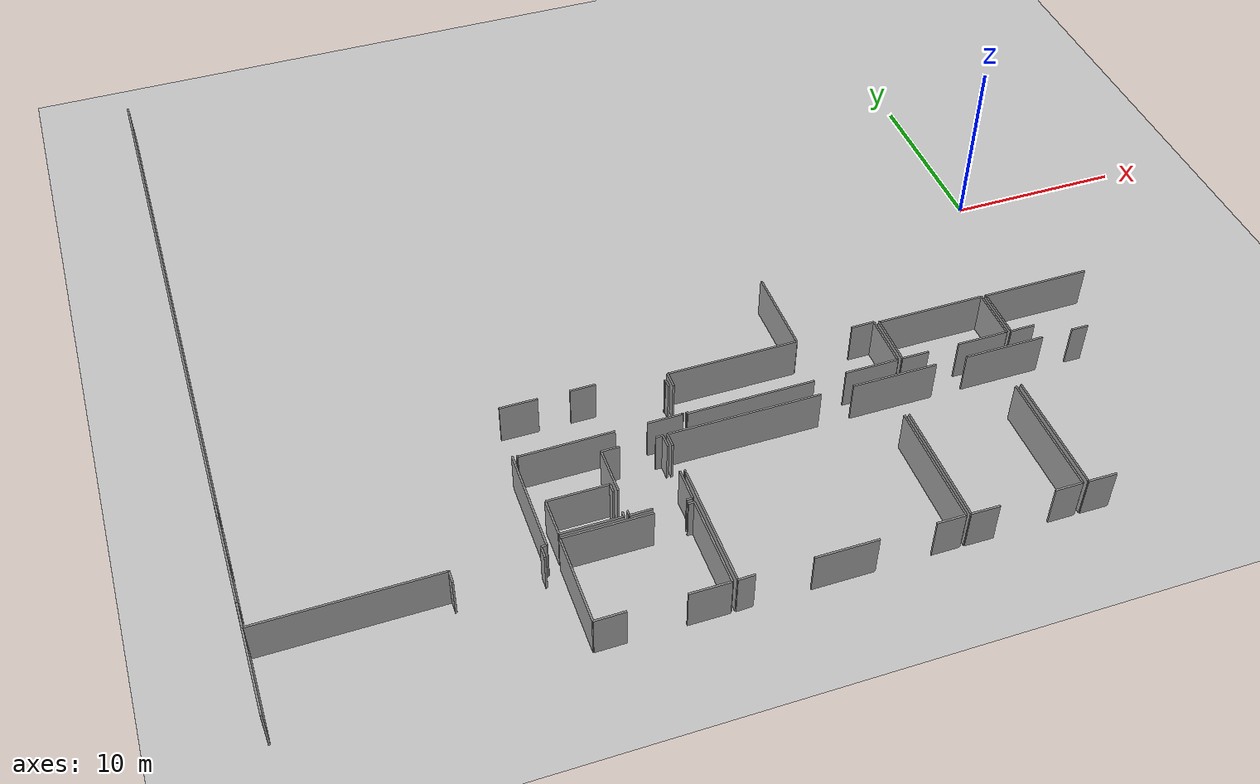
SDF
<sdf version="1.6">
 <world name="default">
  <model name="ground_plane">
   <static>1</static>
   <link name="link">
    <collision name="collision">
     <geometry><plane><normal>0 0 1</normal><size>100 100</size></plane></geometry>
     <surface><friction><ode><mu>100</mu><mu2>50</mu2></ode></friction></surface>
    </collision>
    <visual name="visual">
     <cast_shadows>0</cast_shadows>
     <geometry><plane><normal>0 0 1</normal><size>100 100</size></plane></geometry>
     <material>
      <script><uri>file://media/materials/scripts/gazebo.material</uri><name>Gazebo/Grey</name></script>
     </material>
    </visual>
   </link>
  </model>
  <model name="50045230">
   <static>1</static>
   <link name="Wall_138">
    <collision name="Wall_138_Collision">
     <geometry><box><size>1.54468241776 0.1 2.5</size></box></geometry>
     <pose>0.772341208882 0 1.25 0 0 0</pose>
    </collision>
    <visual name="Wall_138_Visual">
     <pose>0.772341208882 0 1.25 0 0 0</pose>
     <geometry><box><size>1.54468241776 0.1 2.5</size></box></geometry>
     <material>
      <script><uri>file://media/materials/scripts/gazebo.material</uri><name>Gazebo/Grey</name></script>
      <ambient>1 1 1 1</ambient>
     </material>
    </visual>
    <pose>0.0111721914 -41.7234374802 0 0 0 1.57079632679</pose>
   </link>
   <link name="Wall_139">
    <collision name="Wall_139_Collision">
     <geometry><box><size>3.10612312263 0.1 2.5</size></box></geometry>
     <pose>1.55306156131 0 1.25 0 0 0</pose>
    </collision>
    <visual name="Wall_139_Visual">
     <pose>1.55306156131 0 1.25 0 0 0</pose>
     <geometry><box><size>3.10612312263 0.1 2.5</size></box></geometry>
     <material>
      <script><uri>file://media/materials/scripts/gazebo.material</uri><name>Gazebo/Grey</name></script>
      <ambient>1 1 1 1</ambient>
     </material>
    </visual>
    <pose>0.0111721914 -37.0893902269 0 0 0 1.57079632679</pose>
   </link>
   <link name="Wall_156">
    <collision name="Wall_156_Collision">
     <geometry><box><size>6.0126702807 0.1 2.5</size></box></geometry>
     <pose>3.00633514035 0 1.25 0 0 0</pose>
    </collision>
    <visual name="Wall_156_Visual">
     <pose>3.00633514035 0 1.25 0 0 0</pose>
     <geometry><box><size>6.0126702807 0.1 2.5</size></box></geometry>
     <material>
      <script><uri>file://media/materials/scripts/gazebo.material</uri><name>Gazebo/Grey</name></script>
      <ambient>1 1 1 1</ambient>
     </material>
    </visual>
    <pose>14.7885535821 -35.693247172 0 0 0 -1.57079632679</pose>
   </link>
   <link name="Wall_157">
    <collision name="Wall_157_Collision">
     <geometry><box><size>0.292000457044 0.1 2.5</size></box></geometry>
     <pose>0.146000228522 0 1.25 0 0 0</pose>
    </collision>
    <visual name="Wall_157_Visual">
     <pose>0.146000228522 0 1.25 0 0 0</pose>
     <geometry><box><size>0.292000457044 0.1 2.5</size></box></geometry>
     <material>
      <script><uri>file://media/materials/scripts/gazebo.material</uri><name>Gazebo/Grey</name></script>
      <ambient>1 1 1 1</ambient>
     </material>
    </visual>
    <pose>14.7885535821 -41.7059174527 0 0 0 3.14159265359</pose>
   </link>
   <link name="Wall_158">
    <collision name="Wall_158_Collision">
     <geometry><box><size>0.671601051202 0.1 2.5</size></box></geometry>
     <pose>0.335800525601 0 1.25 0 0 0</pose>
    </collision>
    <visual name="Wall_158_Visual">
     <pose>0.335800525601 0 1.25 0 0 0</pose>
     <geometry><box><size>0.671601051202 0.1 2.5</size></box></geometry>
     <material>
      <script><uri>file://media/materials/scripts/gazebo.material</uri><name>Gazebo/Grey</name></script>
      <ambient>1 1 1 1</ambient>
     </material>
    </visual>
    <pose>14.496553125 -41.7059174527 0 0 0 -1.57079632679</pose>
   </link>
   <link name="Wall_159">
    <collision name="Wall_159_Collision">
     <geometry><box><size>0.703594144756 0.1 2.5</size></box></geometry>
     <pose>0.351797072378 0 1.25 0 0 0</pose>
    </collision>
    <visual name="Wall_159_Visual">
     <pose>0.351797072378 0 1.25 0 0 0</pose>
     <geometry><box><size>0.703594144756 0.1 2.5</size></box></geometry>
     <material>
      <script><uri>file://media/materials/scripts/gazebo.material</uri><name>Gazebo/Grey</name></script>
      <ambient>1 1 1 1</ambient>
     </material>
    </visual>
    <pose>9.9093529016 -42.3775185039 0 0 0 1.57079632679</pose>
   </link>
   <link name="Wall_160">
    <collision name="Wall_160_Collision">
     <geometry><box><size>9.89830454779 0.1 2.5</size></box></geometry>
     <pose>4.9491522739 0 1.25 0 0 0</pose>
    </collision>
    <visual name="Wall_160_Visual">
     <pose>4.9491522739 0 1.25 0 0 0</pose>
     <geometry><box><size>9.89830454779 0.1 2.5</size></box></geometry>
     <material>
      <script><uri>file://media/materials/scripts/gazebo.material</uri><name>Gazebo/Grey</name></script>
      <ambient>1 1 1 1</ambient>
     </material>
    </visual>
    <pose>9.9093529016 -41.6739243592 0 0 0 -3.13659045072</pose>
   </link>
   <link name="Wall_161">
    <collision name="Wall_161_Collision">
     <geometry><box><size>0.0944558000178 0.1 2.5</size></box></geometry>
     <pose>0.0472279000089 0 1.25 0 0 0</pose>
    </collision>
    <visual name="Wall_161_Visual">
     <pose>0.0472279000089 0 1.25 0 0 0</pose>
     <geometry><box><size>0.0944558000178 0.1 2.5</size></box></geometry>
     <material>
      <script><uri>file://media/materials/scripts/gazebo.material</uri><name>Gazebo/Grey</name></script>
      <ambient>1 1 1 1</ambient>
     </material>
    </visual>
    <pose>15.0474183351 -35.800906471 0 0 0 1.57079632679</pose>
   </link>
   <link name="Wall_162">
    <collision name="Wall_162_Collision">
     <geometry><box><size>2.10608503561 0.1 2.5</size></box></geometry>
     <pose>1.05304251781 0 1.25 0 0 0</pose>
    </collision>
    <visual name="Wall_162_Visual">
     <pose>1.05304251781 0 1.25 0 0 0</pose>
     <geometry><box><size>2.10608503561 0.1 2.5</size></box></geometry>
     <material>
      <script><uri>file://media/materials/scripts/gazebo.material</uri><name>Gazebo/Grey</name></script>
      <ambient>1 1 1 1</ambient>
     </material>
    </visual>
    <pose>15.0474183351 -32.2872522757 0 0 0 0.0</pose>
   </link>
   <link name="Wall_163">
    <collision name="Wall_163_Collision">
     <geometry><box><size>1.42191526908 0.1 2.5</size></box></geometry>
     <pose>0.710957634542 0 1.25 0 0 0</pose>
    </collision>
    <visual name="Wall_163_Visual">
     <pose>0.710957634542 0 1.25 0 0 0</pose>
     <geometry><box><size>1.42191526908 0.1 2.5</size></box></geometry>
     <material>
      <script><uri>file://media/materials/scripts/gazebo.material</uri><name>Gazebo/Grey</name></script>
      <ambient>1 1 1 1</ambient>
     </material>
    </visual>
    <pose>18.9292470197 -32.2872522757 0 0 0 0.0</pose>
   </link>
   <link name="Wall_168">
    <collision name="Wall_168_Collision">
     <geometry><box><size>0.0938210164155 0.1 2.5</size></box></geometry>
     <pose>0.0469105082077 0 1.25 0 0 0</pose>
    </collision>
    <visual name="Wall_168_Visual">
     <pose>0.0469105082077 0 1.25 0 0 0</pose>
     <geometry><box><size>0.0938210164155 0.1 2.5</size></box></geometry>
     <material>
      <script><uri>file://media/materials/scripts/gazebo.material</uri><name>Gazebo/Grey</name></script>
      <ambient>1 1 1 1</ambient>
     </material>
    </visual>
    <pose>23.8932547894 -33.2257163533 0 0 0 0.0</pose>
   </link>
   <link name="Wall_169">
    <collision name="Wall_169_Collision">
     <geometry><box><size>0.452600708419 0.1 2.5</size></box></geometry>
     <pose>0.226300354209 0 1.25 0 0 0</pose>
    </collision>
    <visual name="Wall_169_Visual">
     <pose>0.226300354209 0 1.25 0 0 0</pose>
     <geometry><box><size>0.452600708419 0.1 2.5</size></box></geometry>
     <material>
      <script><uri>file://media/materials/scripts/gazebo.material</uri><name>Gazebo/Grey</name></script>
      <ambient>1 1 1 1</ambient>
     </material>
    </visual>
    <pose>23.9870758059 -33.2257163533 0 0 0 -1.57079632679</pose>
   </link>
   <link name="Wall_170">
    <collision name="Wall_170_Collision">
     <geometry><box><size>0.0756662053906 0.1 2.5</size></box></geometry>
     <pose>0.0378331026953 0 1.25 0 0 0</pose>
    </collision>
    <visual name="Wall_170_Visual">
     <pose>0.0378331026953 0 1.25 0 0 0</pose>
     <geometry><box><size>0.0756662053906 0.1 2.5</size></box></geometry>
     <material>
      <script><uri>file://media/materials/scripts/gazebo.material</uri><name>Gazebo/Grey</name></script>
      <ambient>1 1 1 1</ambient>
     </material>
    </visual>
    <pose>23.9870758059 -35.6957863064 0 0 0 -1.57079632679</pose>
   </link>
   <link name="Wall_171">
    <collision name="Wall_171_Collision">
     <geometry><box><size>1.95069000978 0.1 2.5</size></box></geometry>
     <pose>0.975345004888 0 1.25 0 0 0</pose>
    </collision>
    <visual name="Wall_171_Visual">
     <pose>0.975345004888 0 1.25 0 0 0</pose>
     <geometry><box><size>1.95069000978 0.1 2.5</size></box></geometry>
     <material>
      <script><uri>file://media/materials/scripts/gazebo.material</uri><name>Gazebo/Grey</name></script>
      <ambient>1 1 1 1</ambient>
     </material>
    </visual>
    <pose>23.9870758059 -35.7714525118 0 0 0 3.14159265359</pose>
   </link>
   <link name="Wall_172">
    <collision name="Wall_172_Collision">
     <geometry><box><size>5.22968417301 0.1 2.5</size></box></geometry>
     <pose>2.61484208651 0 1.25 0 0 0</pose>
    </collision>
    <visual name="Wall_172_Visual">
     <pose>2.61484208651 0 1.25 0 0 0</pose>
     <geometry><box><size>5.22968417301 0.1 2.5</size></box></geometry>
     <material>
      <script><uri>file://media/materials/scripts/gazebo.material</uri><name>Gazebo/Grey</name></script>
      <ambient>1 1 1 1</ambient>
     </material>
    </visual>
    <pose>20.277019564 -35.7714525118 0 0 0 -3.13596055156</pose>
   </link>
   <link name="Wall_213">
    <collision name="Wall_213_Collision">
     <geometry><box><size>0.325643987964 0.1 2.5</size></box></geometry>
     <pose>0.162821993982 0 1.25 0 0 0</pose>
    </collision>
    <visual name="Wall_213_Visual">
     <pose>0.162821993982 0 1.25 0 0 0</pose>
     <geometry><box><size>0.325643987964 0.1 2.5</size></box></geometry>
     <material>
      <script><uri>file://media/materials/scripts/gazebo.material</uri><name>Gazebo/Grey</name></script>
      <ambient>1 1 1 1</ambient>
     </material>
    </visual>
    <pose>19.1667830437 -41.2566176191 0 0 0 1.57079632679</pose>
   </link>
   <link name="Wall_214">
    <collision name="Wall_214_Collision">
     <geometry><box><size>2.72195208653 0.1 2.5</size></box></geometry>
     <pose>1.36097604327 0 1.25 0 0 0</pose>
    </collision>
    <visual name="Wall_214_Visual">
     <pose>1.36097604327 0 1.25 0 0 0</pose>
     <geometry><box><size>2.72195208653 0.1 2.5</size></box></geometry>
     <material>
      <script><uri>file://media/materials/scripts/gazebo.material</uri><name>Gazebo/Grey</name></script>
      <ambient>1 1 1 1</ambient>
     </material>
    </visual>
    <pose>19.1667830437 -39.5608567039 0 0 0 1.57079632679</pose>
   </link>
   <link name="Wall_215">
    <collision name="Wall_215_Collision">
     <geometry><box><size>0.976297180291 0.1 2.5</size></box></geometry>
     <pose>0.488148590146 0 1.25 0 0 0</pose>
    </collision>
    <visual name="Wall_215_Visual">
     <pose>0.488148590146 0 1.25 0 0 0</pose>
     <geometry><box><size>0.976297180291 0.1 2.5</size></box></geometry>
     <material>
      <script><uri>file://media/materials/scripts/gazebo.material</uri><name>Gazebo/Grey</name></script>
      <ambient>1 1 1 1</ambient>
     </material>
    </visual>
    <pose>19.1667830437 -36.8389046174 0 0 0 0.0</pose>
   </link>
   <link name="Wall_216">
    <collision name="Wall_216_Collision">
     <geometry><box><size>0.393565833407 0.1 2.5</size></box></geometry>
     <pose>0.196782916704 0 1.25 0 0 0</pose>
    </collision>
    <visual name="Wall_216_Visual">
     <pose>0.196782916704 0 1.25 0 0 0</pose>
     <geometry><box><size>0.393565833407 0.1 2.5</size></box></geometry>
     <material>
      <script><uri>file://media/materials/scripts/gazebo.material</uri><name>Gazebo/Grey</name></script>
      <ambient>1 1 1 1</ambient>
     </material>
    </visual>
    <pose>22.1123059149 -36.8389046174 0 0 0 0.0</pose>
   </link>
   <link name="Wall_217">
    <collision name="Wall_217_Collision">
     <geometry><box><size>0.783957748803 0.1 2.5</size></box></geometry>
     <pose>0.391978874402 0 1.25 0 0 0</pose>
    </collision>
    <visual name="Wall_217_Visual">
     <pose>0.391978874402 0 1.25 0 0 0</pose>
     <geometry><box><size>0.783957748803 0.1 2.5</size></box></geometry>
     <material>
      <script><uri>file://media/materials/scripts/gazebo.material</uri><name>Gazebo/Grey</name></script>
      <ambient>1 1 1 1</ambient>
     </material>
    </visual>
    <pose>22.5058717483 -36.8389046174 0 0 0 -1.57079632679</pose>
   </link>
   <link name="Wall_218">
    <collision name="Wall_218_Collision">
     <geometry><box><size>1.85598029632 0.1 2.5</size></box></geometry>
     <pose>0.927990148158 0 1.25 0 0 0</pose>
    </collision>
    <visual name="Wall_218_Visual">
     <pose>0.927990148158 0 1.25 0 0 0</pose>
     <geometry><box><size>1.85598029632 0.1 2.5</size></box></geometry>
     <material>
      <script><uri>file://media/materials/scripts/gazebo.material</uri><name>Gazebo/Grey</name></script>
      <ambient>1 1 1 1</ambient>
     </material>
    </visual>
    <pose>22.5058717483 -39.3795625071 0 0 0 -1.57079632679</pose>
   </link>
   <link name="Wall_219">
    <collision name="Wall_219_Collision">
     <geometry><box><size>0.329325732858 0.1 2.5</size></box></geometry>
     <pose>0.164662866429 0 1.25 0 0 0</pose>
    </collision>
    <visual name="Wall_219_Visual">
     <pose>0.164662866429 0 1.25 0 0 0</pose>
     <geometry><box><size>0.329325732858 0.1 2.5</size></box></geometry>
     <material>
      <script><uri>file://media/materials/scripts/gazebo.material</uri><name>Gazebo/Grey</name></script>
      <ambient>1 1 1 1</ambient>
     </material>
    </visual>
    <pose>22.5058717483 -41.2355428035 0 0 0 3.14159265359</pose>
   </link>
   <link name="Wall_220">
    <collision name="Wall_220_Collision">
     <geometry><box><size>1.23254907313 0.1 2.5</size></box></geometry>
     <pose>0.616274536564 0 1.25 0 0 0</pose>
    </collision>
    <visual name="Wall_220_Visual">
     <pose>0.616274536564 0 1.25 0 0 0</pose>
     <geometry><box><size>1.23254907313 0.1 2.5</size></box></geometry>
     <material>
      <script><uri>file://media/materials/scripts/gazebo.material</uri><name>Gazebo/Grey</name></script>
      <ambient>1 1 1 1</ambient>
     </material>
    </visual>
    <pose>20.3991519291 -41.2355428035 0 0 0 -3.12449325925</pose>
   </link>
   <link name="Wall_221">
    <collision name="Wall_221_Collision">
     <geometry><box><size>3.35800525601 0.1 2.5</size></box></geometry>
     <pose>1.679002628 0 1.25 0 0 0</pose>
    </collision>
    <visual name="Wall_221_Visual">
     <pose>1.679002628 0 1.25 0 0 0</pose>
     <geometry><box><size>3.35800525601 0.1 2.5</size></box></geometry>
     <material>
      <script><uri>file://media/materials/scripts/gazebo.material</uri><name>Gazebo/Grey</name></script>
      <ambient>1 1 1 1</ambient>
     </material>
    </visual>
    <pose>15.5477547704 -41.2387167215 0 0 0 0.0</pose>
   </link>
   <link name="Wall_222">
    <collision name="Wall_222_Collision">
     <geometry><box><size>0.292000457044 0.1 2.5</size></box></geometry>
     <pose>0.146000228522 0 1.25 0 0 0</pose>
    </collision>
    <visual name="Wall_222_Visual">
     <pose>0.146000228522 0 1.25 0 0 0</pose>
     <geometry><box><size>0.292000457044 0.1 2.5</size></box></geometry>
     <material>
      <script><uri>file://media/materials/scripts/gazebo.material</uri><name>Gazebo/Grey</name></script>
      <ambient>1 1 1 1</ambient>
     </material>
    </visual>
    <pose>18.9057600264 -41.2387167215 0 0 0 1.57079632679</pose>
   </link>
   <link name="Wall_223">
    <collision name="Wall_223_Collision">
     <geometry><box><size>0.509223405741 0.1 2.5</size></box></geometry>
     <pose>0.25461170287 0 1.25 0 0 0</pose>
    </collision>
    <visual name="Wall_223_Visual">
     <pose>0.25461170287 0 1.25 0 0 0</pose>
     <geometry><box><size>0.509223405741 0.1 2.5</size></box></geometry>
     <material>
      <script><uri>file://media/materials/scripts/gazebo.material</uri><name>Gazebo/Grey</name></script>
      <ambient>1 1 1 1</ambient>
     </material>
    </visual>
    <pose>18.9057600264 -39.570378458 0 0 0 1.57079632679</pose>
   </link>
   <link name="Wall_224">
    <collision name="Wall_224_Collision">
     <geometry><box><size>3.37857224472 0.1 2.5</size></box></geometry>
     <pose>1.68928612236 0 1.25 0 0 0</pose>
    </collision>
    <visual name="Wall_224_Visual">
     <pose>1.68928612236 0 1.25 0 0 0</pose>
     <geometry><box><size>3.37857224472 0.1 2.5</size></box></geometry>
     <material>
      <script><uri>file://media/materials/scripts/gazebo.material</uri><name>Gazebo/Grey</name></script>
      <ambient>1 1 1 1</ambient>
     </material>
    </visual>
    <pose>18.9057600264 -39.0611550522 0 0 0 3.14159265359</pose>
   </link>
   <link name="Wall_225">
    <collision name="Wall_225_Collision">
     <geometry><box><size>2.17765879428 0.1 2.5</size></box></geometry>
     <pose>1.08882939714 0 1.25 0 0 0</pose>
    </collision>
    <visual name="Wall_225_Visual">
     <pose>1.08882939714 0 1.25 0 0 0</pose>
     <geometry><box><size>2.17765879428 0.1 2.5</size></box></geometry>
     <material>
      <script><uri>file://media/materials/scripts/gazebo.material</uri><name>Gazebo/Grey</name></script>
      <ambient>1 1 1 1</ambient>
     </material>
    </visual>
    <pose>15.5271877817 -39.0611550522 0 0 0 -1.56135164495</pose>
   </link>
   <link name="Wall_226">
    <collision name="Wall_226_Collision">
     <geometry><box><size>5.17107418081 0.1 2.5</size></box></geometry>
     <pose>2.58553709041 0 1.25 0 0 0</pose>
    </collision>
    <visual name="Wall_226_Visual">
     <pose>2.58553709041 0 1.25 0 0 0</pose>
     <geometry><box><size>5.17107418081 0.1 2.5</size></box></geometry>
     <material>
      <script><uri>file://media/materials/scripts/gazebo.material</uri><name>Gazebo/Grey</name></script>
      <ambient>1 1 1 1</ambient>
     </material>
    </visual>
    <pose>15.5082712303 -46.676526972 0 0 0 1.57079632679</pose>
   </link>
   <link name="Wall_227">
    <collision name="Wall_227_Collision">
     <geometry><box><size>4.86879022941 0.1 2.5</size></box></geometry>
     <pose>2.43439511471 0 1.25 0 0 0</pose>
    </collision>
    <visual name="Wall_227_Visual">
     <pose>2.43439511471 0 1.25 0 0 0</pose>
     <geometry><box><size>4.86879022941 0.1 2.5</size></box></geometry>
     <material>
      <script><uri>file://media/materials/scripts/gazebo.material</uri><name>Gazebo/Grey</name></script>
      <ambient>1 1 1 1</ambient>
     </material>
    </visual>
    <pose>15.5082712303 -41.5054527911 0 0 0 0.0</pose>
   </link>
   <link name="Wall_228">
    <collision name="Wall_228_Collision">
     <geometry><box><size>0.335800525601 0.1 2.5</size></box></geometry>
     <pose>0.1679002628 0 1.25 0 0 0</pose>
    </collision>
    <visual name="Wall_228_Visual">
     <pose>0.1679002628 0 1.25 0 0 0</pose>
     <geometry><box><size>0.335800525601 0.1 2.5</size></box></geometry>
     <material>
      <script><uri>file://media/materials/scripts/gazebo.material</uri><name>Gazebo/Grey</name></script>
      <ambient>1 1 1 1</ambient>
     </material>
    </visual>
    <pose>22.1615651224 -41.5054527911 0 0 0 0.0</pose>
   </link>
   <link name="Wall_229">
    <collision name="Wall_229_Collision">
     <geometry><box><size>5.15418893699 0.1 2.5</size></box></geometry>
     <pose>2.5770944685 0 1.25 0 0 0</pose>
    </collision>
    <visual name="Wall_229_Visual">
     <pose>2.5770944685 0 1.25 0 0 0</pose>
     <geometry><box><size>5.15418893699 0.1 2.5</size></box></geometry>
     <material>
      <script><uri>file://media/materials/scripts/gazebo.material</uri><name>Gazebo/Grey</name></script>
      <ambient>1 1 1 1</ambient>
     </material>
    </visual>
    <pose>22.4973656481 -41.5054527911 0 0 0 -1.57079632679</pose>
   </link>
   <link name="Wall_230">
    <collision name="Wall_230_Collision">
     <geometry><box><size>2.25424352838 0.1 2.5</size></box></geometry>
     <pose>1.12712176419 0 1.25 0 0 0</pose>
    </collision>
    <visual name="Wall_230_Visual">
     <pose>1.12712176419 0 1.25 0 0 0</pose>
     <geometry><box><size>2.25424352838 0.1 2.5</size></box></geometry>
     <material>
      <script><uri>file://media/materials/scripts/gazebo.material</uri><name>Gazebo/Grey</name></script>
      <ambient>1 1 1 1</ambient>
     </material>
    </visual>
    <pose>22.4973656481 -46.6596417281 0 0 0 3.14159265359</pose>
   </link>
   <link name="Wall_231">
    <collision name="Wall_231_Collision">
     <geometry><box><size>1.67845277937 0.1 2.5</size></box></geometry>
     <pose>0.839226389686 0 1.25 0 0 0</pose>
    </collision>
    <visual name="Wall_231_Visual">
     <pose>0.839226389686 0 1.25 0 0 0</pose>
     <geometry><box><size>1.67845277937 0.1 2.5</size></box></geometry>
     <material>
      <script><uri>file://media/materials/scripts/gazebo.material</uri><name>Gazebo/Grey</name></script>
      <ambient>1 1 1 1</ambient>
     </material>
    </visual>
    <pose>17.1866390747 -46.6596417281 0 0 0 -3.13153247862</pose>
   </link>
   <link name="Wall_232">
    <collision name="Wall_232_Collision">
     <geometry><box><size>0.133558469918 0.1 2.5</size></box></geometry>
     <pose>0.0667792349588 0 1.25 0 0 0</pose>
    </collision>
    <visual name="Wall_232_Visual">
     <pose>0.0667792349588 0 1.25 0 0 0</pose>
     <geometry><box><size>0.133558469918 0.1 2.5</size></box></geometry>
     <material>
      <script><uri>file://media/materials/scripts/gazebo.material</uri><name>Gazebo/Grey</name></script>
      <ambient>1 1 1 1</ambient>
     </material>
    </visual>
    <pose>22.7479782142 -39.5202305534 0 0 0 1.57079632679</pose>
   </link>
   <link name="Wall_233">
    <collision name="Wall_233_Collision">
     <geometry><box><size>0.825218682951 0.1 2.5</size></box></geometry>
     <pose>0.412609341475 0 1.25 0 0 0</pose>
    </collision>
    <visual name="Wall_233_Visual">
     <pose>0.412609341475 0 1.25 0 0 0</pose>
     <geometry><box><size>0.825218682951 0.1 2.5</size></box></geometry>
     <material>
      <script><uri>file://media/materials/scripts/gazebo.material</uri><name>Gazebo/Grey</name></script>
      <ambient>1 1 1 1</ambient>
     </material>
    </visual>
    <pose>22.7479782142 -37.6426676146 0 0 0 1.57079632679</pose>
   </link>
   <link name="Wall_234">
    <collision name="Wall_234_Collision">
     <geometry><box><size>8.61033173791 0.1 2.5</size></box></geometry>
     <pose>4.30516586896 0 1.25 0 0 0</pose>
    </collision>
    <visual name="Wall_234_Visual">
     <pose>4.30516586896 0 1.25 0 0 0</pose>
     <geometry><box><size>8.61033173791 0.1 2.5</size></box></geometry>
     <material>
      <script><uri>file://media/materials/scripts/gazebo.material</uri><name>Gazebo/Grey</name></script>
      <ambient>1 1 1 1</ambient>
     </material>
    </visual>
    <pose>22.7479782142 -36.8174489317 0 0 0 0.0</pose>
   </link>
   <link name="Wall_235">
    <collision name="Wall_235_Collision">
     <geometry><box><size>4.85228585575 0.1 2.5</size></box></geometry>
     <pose>2.42614292788 0 1.25 0 0 0</pose>
    </collision>
    <visual name="Wall_235_Visual">
     <pose>2.42614292788 0 1.25 0 0 0</pose>
     <geometry><box><size>4.85228585575 0.1 2.5</size></box></geometry>
     <material>
      <script><uri>file://media/materials/scripts/gazebo.material</uri><name>Gazebo/Grey</name></script>
      <ambient>1 1 1 1</ambient>
     </material>
    </visual>
    <pose>33.2050224079 -36.8174489317 0 0 0 0.0</pose>
   </link>
   <link name="Wall_236">
    <collision name="Wall_236_Collision">
     <geometry><box><size>4.58986631457 0.1 2.5</size></box></geometry>
     <pose>2.29493315729 0 1.25 0 0 0</pose>
    </collision>
    <visual name="Wall_236_Visual">
     <pose>2.29493315729 0 1.25 0 0 0</pose>
     <geometry><box><size>4.58986631457 0.1 2.5</size></box></geometry>
     <material>
      <script><uri>file://media/materials/scripts/gazebo.material</uri><name>Gazebo/Grey</name></script>
      <ambient>1 1 1 1</ambient>
     </material>
    </visual>
    <pose>39.8538728148 -36.8174489317 0 0 0 0.0</pose>
   </link>
   <link name="Wall_237">
    <collision name="Wall_237_Collision">
     <geometry><box><size>0.979090228141 0.1 2.5</size></box></geometry>
     <pose>0.489545114071 0 1.25 0 0 0</pose>
    </collision>
    <visual name="Wall_237_Visual">
     <pose>0.489545114071 0 1.25 0 0 0</pose>
     <geometry><box><size>0.979090228141 0.1 2.5</size></box></geometry>
     <material>
      <script><uri>file://media/materials/scripts/gazebo.material</uri><name>Gazebo/Grey</name></script>
      <ambient>1 1 1 1</ambient>
     </material>
    </visual>
    <pose>46.2364949789 -36.8174489317 0 0 0 0.0</pose>
   </link>
   <link name="Wall_246">
    <collision name="Wall_246_Collision">
     <geometry><box><size>7.05587365267 0.1 2.5</size></box></geometry>
     <pose>3.52793682634 0 1.25 0 0 0</pose>
    </collision>
    <visual name="Wall_246_Visual">
     <pose>3.52793682634 0 1.25 0 0 0</pose>
     <geometry><box><size>7.05587365267 0.1 2.5</size></box></geometry>
     <material>
      <script><uri>file://media/materials/scripts/gazebo.material</uri><name>Gazebo/Grey</name></script>
      <ambient>1 1 1 1</ambient>
     </material>
    </visual>
    <pose>22.7649904148 -46.6562138967 0 0 0 1.57079632679</pose>
   </link>
   <link name="Wall_247">
    <collision name="Wall_247_Collision">
     <geometry><box><size>7.02756230401 0.1 2.5</size></box></geometry>
     <pose>3.51378115201 0 1.25 0 0 0</pose>
    </collision>
    <visual name="Wall_247_Visual">
     <pose>3.51378115201 0 1.25 0 0 0</pose>
     <geometry><box><size>7.02756230401 0.1 2.5</size></box></geometry>
     <material>
      <script><uri>file://media/materials/scripts/gazebo.material</uri><name>Gazebo/Grey</name></script>
      <ambient>1 1 1 1</ambient>
     </material>
    </visual>
    <pose>34.8511432453 -39.600340244 0 0 0 -1.57079632679</pose>
   </link>
   <link name="Wall_248">
    <collision name="Wall_248_Collision">
     <geometry><box><size>1.59064075057 0.1 2.5</size></box></geometry>
     <pose>0.795320375284 0 1.25 0 0 0</pose>
    </collision>
    <visual name="Wall_248_Visual">
     <pose>0.795320375284 0 1.25 0 0 0</pose>
     <geometry><box><size>1.59064075057 0.1 2.5</size></box></geometry>
     <material>
      <script><uri>file://media/materials/scripts/gazebo.material</uri><name>Gazebo/Grey</name></script>
      <ambient>1 1 1 1</ambient>
     </material>
    </visual>
    <pose>34.8511432453 -46.627902548 0 0 0 3.14159265359</pose>
   </link>
   <link name="Wall_249">
    <collision name="Wall_249_Collision">
     <geometry><box><size>3.45550801732 0.1 2.5</size></box></geometry>
     <pose>1.72775400866 0 1.25 0 0 0</pose>
    </collision>
    <visual name="Wall_249_Visual">
     <pose>1.72775400866 0 1.25 0 0 0</pose>
     <geometry><box><size>3.45550801732 0.1 2.5</size></box></geometry>
     <material>
      <script><uri>file://media/materials/scripts/gazebo.material</uri><name>Gazebo/Grey</name></script>
      <ambient>1 1 1 1</ambient>
     </material>
    </visual>
    <pose>30.1914507344 -46.627902548 0 0 0 3.14159265359</pose>
   </link>
   <link name="Wall_250">
    <collision name="Wall_250_Collision">
     <geometry><box><size>0.913384652713 0.1 2.5</size></box></geometry>
     <pose>0.456692326357 0 1.25 0 0 0</pose>
    </collision>
    <visual name="Wall_250_Visual">
     <pose>0.456692326357 0 1.25 0 0 0</pose>
     <geometry><box><size>0.913384652713 0.1 2.5</size></box></geometry>
     <material>
      <script><uri>file://media/materials/scripts/gazebo.material</uri><name>Gazebo/Grey</name></script>
      <ambient>1 1 1 1</ambient>
     </material>
    </visual>
    <pose>23.6779361916 -46.627902548 0 0 0 -3.1105916028</pose>
   </link>
   <link name="Wall_251">
    <collision name="Wall_251_Collision">
     <geometry><box><size>7.01347010804 0.1 2.5</size></box></geometry>
     <pose>3.50673505402 0 1.25 0 0 0</pose>
    </collision>
    <visual name="Wall_251_Visual">
     <pose>3.50673505402 0 1.25 0 0 0</pose>
     <geometry><box><size>7.01347010804 0.1 2.5</size></box></geometry>
     <material>
      <script><uri>file://media/materials/scripts/gazebo.material</uri><name>Gazebo/Grey</name></script>
      <ambient>1 1 1 1</ambient>
     </material>
    </visual>
    <pose>35.1035332055 -46.6312034228 0 0 0 1.57079632679</pose>
   </link>
   <link name="Wall_252">
    <collision name="Wall_252_Collision">
     <geometry><box><size>7.03505275052 0.1 2.5</size></box></geometry>
     <pose>3.51752637526 0 1.25 0 0 0</pose>
    </collision>
    <visual name="Wall_252_Visual">
     <pose>3.51752637526 0 1.25 0 0 0</pose>
     <geometry><box><size>7.03505275052 0.1 2.5</size></box></geometry>
     <material>
      <script><uri>file://media/materials/scripts/gazebo.material</uri><name>Gazebo/Grey</name></script>
      <ambient>1 1 1 1</ambient>
     </material>
    </visual>
    <pose>41.3195881524 -39.6177333147 0 0 0 -1.57079632679</pose>
   </link>
   <link name="Wall_253">
    <collision name="Wall_253_Collision">
     <geometry><box><size>1.53414500997 0.1 2.5</size></box></geometry>
     <pose>0.767072504983 0 1.25 0 0 0</pose>
    </collision>
    <visual name="Wall_253_Visual">
     <pose>0.767072504983 0 1.25 0 0 0</pose>
     <geometry><box><size>1.53414500997 0.1 2.5</size></box></geometry>
     <material>
      <script><uri>file://media/materials/scripts/gazebo.material</uri><name>Gazebo/Grey</name></script>
      <ambient>1 1 1 1</ambient>
     </material>
    </visual>
    <pose>41.3195881524 -46.6527860652 0 0 0 3.14159265359</pose>
   </link>
   <link name="Wall_254">
    <collision name="Wall_254_Collision">
     <geometry><box><size>1.59700747506 0.1 2.5</size></box></geometry>
     <pose>0.798503737532 0 1.25 0 0 0</pose>
    </collision>
    <visual name="Wall_254_Visual">
     <pose>0.798503737532 0 1.25 0 0 0</pose>
     <geometry><box><size>1.59700747506 0.1 2.5</size></box></geometry>
     <material>
      <script><uri>file://media/materials/scripts/gazebo.material</uri><name>Gazebo/Grey</name></script>
      <ambient>1 1 1 1</ambient>
     </material>
    </visual>
    <pose>36.7003948354 -46.6527860652 0 0 0 3.12807781421</pose>
   </link>
   <link name="Wall_255">
    <collision name="Wall_255_Collision">
     <geometry><box><size>7.05282669138 0.1 2.5</size></box></geometry>
     <pose>3.52641334569 0 1.25 0 0 0</pose>
    </collision>
    <visual name="Wall_255_Visual">
     <pose>3.52641334569 0 1.25 0 0 0</pose>
     <geometry><box><size>7.05282669138 0.1 2.5</size></box></geometry>
     <material>
      <script><uri>file://media/materials/scripts/gazebo.material</uri><name>Gazebo/Grey</name></script>
      <ambient>1 1 1 1</ambient>
     </material>
    </visual>
    <pose>41.6291086369 -46.6565947668 0 0 0 1.57079632679</pose>
   </link>
   <link name="Wall_258">
    <collision name="Wall_258_Collision">
     <geometry><box><size>1.60023746412 0.1 2.5</size></box></geometry>
     <pose>0.800118732061 0 1.25 0 0 0</pose>
    </collision>
    <visual name="Wall_258_Visual">
     <pose>0.800118732061 0 1.25 0 0 0</pose>
     <geometry><box><size>1.60023746412 0.1 2.5</size></box></geometry>
     <material>
      <script><uri>file://media/materials/scripts/gazebo.material</uri><name>Gazebo/Grey</name></script>
      <ambient>1 1 1 1</ambient>
     </material>
    </visual>
    <pose>43.2292711415 -46.6720834867 0 0 0 3.13191348903</pose>
   </link>
   <link name="Wall_322">
    <collision name="Wall_322_Collision">
     <geometry><box><size>1.41112394785 0.1 2.5</size></box></geometry>
     <pose>0.705561973923 0 1.25 0 0 0</pose>
    </collision>
    <visual name="Wall_322_Visual">
     <pose>0.705561973923 0 1.25 0 0 0</pose>
     <geometry><box><size>1.41112394785 0.1 2.5</size></box></geometry>
     <material>
      <script><uri>file://media/materials/scripts/gazebo.material</uri><name>Gazebo/Grey</name></script>
      <ambient>1 1 1 1</ambient>
     </material>
    </visual>
    <pose>44.4604974164 -35.8367082662 0 0 0 3.14159265359</pose>
   </link>
   <link name="Wall_323">
    <collision name="Wall_323_Collision">
     <geometry><box><size>2.97535770056 0.1 2.5</size></box></geometry>
     <pose>1.48767885028 0 1.25 0 0 0</pose>
    </collision>
    <visual name="Wall_323_Visual">
     <pose>1.48767885028 0 1.25 0 0 0</pose>
     <geometry><box><size>2.97535770056 0.1 2.5</size></box></geometry>
     <material>
      <script><uri>file://media/materials/scripts/gazebo.material</uri><name>Gazebo/Grey</name></script>
      <ambient>1 1 1 1</ambient>
     </material>
    </visual>
    <pose>43.0493734686 -35.8367082662 0 0 0 1.57079632679</pose>
   </link>
   <link name="Wall_324">
    <collision name="Wall_324_Collision">
     <geometry><box><size>6.23979585359 0.1 2.5</size></box></geometry>
     <pose>3.1198979268 0 1.25 0 0 0</pose>
    </collision>
    <visual name="Wall_324_Visual">
     <pose>3.1198979268 0 1.25 0 0 0</pose>
     <geometry><box><size>6.23979585359 0.1 2.5</size></box></geometry>
     <material>
      <script><uri>file://media/materials/scripts/gazebo.material</uri><name>Gazebo/Grey</name></script>
      <ambient>1 1 1 1</ambient>
     </material>
    </visual>
    <pose>43.0493734686 -32.8613505656 0 0 0 0.0</pose>
   </link>
   <link name="Wall_326">
    <collision name="Wall_326_Collision">
     <geometry><box><size>2.95148983711 0.1 2.5</size></box></geometry>
     <pose>1.47574491856 0 1.25 0 0 0</pose>
    </collision>
    <visual name="Wall_326_Visual">
     <pose>1.47574491856 0 1.25 0 0 0</pose>
     <geometry><box><size>2.95148983711 0.1 2.5</size></box></geometry>
     <material>
      <script><uri>file://media/materials/scripts/gazebo.material</uri><name>Gazebo/Grey</name></script>
      <ambient>1 1 1 1</ambient>
     </material>
    </visual>
    <pose>36.5381441467 -35.801795168 0 0 0 1.57079632679</pose>
   </link>
   <link name="Wall_327">
    <collision name="Wall_327_Collision">
     <geometry><box><size>6.26061675575 0.1 2.5</size></box></geometry>
     <pose>3.13030837787 0 1.25 0 0 0</pose>
    </collision>
    <visual name="Wall_327_Visual">
     <pose>3.13030837787 0 1.25 0 0 0</pose>
     <geometry><box><size>6.26061675575 0.1 2.5</size></box></geometry>
     <material>
      <script><uri>file://media/materials/scripts/gazebo.material</uri><name>Gazebo/Grey</name></script>
      <ambient>1 1 1 1</ambient>
     </material>
    </visual>
    <pose>36.5381441467 -32.8503053309 0 0 0 0.0</pose>
   </link>
   <link name="Wall_328">
    <collision name="Wall_328_Collision">
     <geometry><box><size>2.96418550916 0.1 2.5</size></box></geometry>
     <pose>1.48209275458 0 1.25 0 0 0</pose>
    </collision>
    <visual name="Wall_328_Visual">
     <pose>1.48209275458 0 1.25 0 0 0</pose>
     <geometry><box><size>2.96418550916 0.1 2.5</size></box></geometry>
     <material>
      <script><uri>file://media/materials/scripts/gazebo.material</uri><name>Gazebo/Grey</name></script>
      <ambient>1 1 1 1</ambient>
     </material>
    </visual>
    <pose>42.7987609024 -32.8503053309 0 0 0 -1.57079632679</pose>
   </link>
   <link name="Wall_329">
    <collision name="Wall_329_Collision">
     <geometry><box><size>2.92165500781 0.1 2.5</size></box></geometry>
     <pose>1.4608275039 0 1.25 0 0 0</pose>
    </collision>
    <visual name="Wall_329_Visual">
     <pose>1.4608275039 0 1.25 0 0 0</pose>
     <geometry><box><size>2.92165500781 0.1 2.5</size></box></geometry>
     <material>
      <script><uri>file://media/materials/scripts/gazebo.material</uri><name>Gazebo/Grey</name></script>
      <ambient>1 1 1 1</ambient>
     </material>
    </visual>
    <pose>42.7987609024 -35.8144908401 0 0 0 3.14159265359</pose>
   </link>
   <link name="Wall_330">
    <collision name="Wall_330_Collision">
     <geometry><box><size>1.54892402011 0.1 2.5</size></box></geometry>
     <pose>0.774462010054 0 1.25 0 0 0</pose>
    </collision>
    <visual name="Wall_330_Visual">
     <pose>0.774462010054 0 1.25 0 0 0</pose>
     <geometry><box><size>1.54892402011 0.1 2.5</size></box></geometry>
     <material>
      <script><uri>file://media/materials/scripts/gazebo.material</uri><name>Gazebo/Grey</name></script>
      <ambient>1 1 1 1</ambient>
     </material>
    </visual>
    <pose>38.0870161362 -35.8144908401 0 0 0 3.13339611584</pose>
   </link>
   <link name="Wall_331">
    <collision name="Wall_331_Collision">
     <geometry><box><size>0.108421039268 0.1 2.5</size></box></geometry>
     <pose>0.0542105196339 0 1.25 0 0 0</pose>
    </collision>
    <visual name="Wall_331_Visual">
     <pose>0.0542105196339 0 1.25 0 0 0</pose>
     <geometry><box><size>0.108421039268 0.1 2.5</size></box></geometry>
     <material>
      <script><uri>file://media/materials/scripts/gazebo.material</uri><name>Gazebo/Grey</name></script>
      <ambient>1 1 1 1</ambient>
     </material>
    </visual>
    <pose>24.2337527137 -35.8138560565 0 0 0 1.57079632679</pose>
   </link>
   <link name="Wall_332">
    <collision name="Wall_332_Collision">
     <geometry><box><size>0.93110058781 0.1 2.5</size></box></geometry>
     <pose>0.465550293905 0 1.25 0 0 0</pose>
    </collision>
    <visual name="Wall_332_Visual">
     <pose>0.465550293905 0 1.25 0 0 0</pose>
     <geometry><box><size>0.93110058781 0.1 2.5</size></box></geometry>
     <material>
      <script><uri>file://media/materials/scripts/gazebo.material</uri><name>Gazebo/Grey</name></script>
      <ambient>1 1 1 1</ambient>
     </material>
    </visual>
    <pose>24.2337527137 -33.7061205835 0 0 0 1.57079632679</pose>
   </link>
   <link name="Wall_333">
    <collision name="Wall_333_Collision">
     <geometry><box><size>7.44943948608 0.1 2.5</size></box></geometry>
     <pose>3.72471974304 0 1.25 0 0 0</pose>
    </collision>
    <visual name="Wall_333_Visual">
     <pose>3.72471974304 0 1.25 0 0 0</pose>
     <geometry><box><size>7.44943948608 0.1 2.5</size></box></geometry>
     <material>
      <script><uri>file://media/materials/scripts/gazebo.material</uri><name>Gazebo/Grey</name></script>
      <ambient>1 1 1 1</ambient>
     </material>
    </visual>
    <pose>24.2337527137 -32.7750199957 0 0 0 0.0</pose>
   </link>
   <link name="Wall_334">
    <collision name="Wall_334_Collision">
     <geometry><box><size>5.07877664504 0.1 2.5</size></box></geometry>
     <pose>2.53938832252 0 1.25 0 0 0</pose>
    </collision>
    <visual name="Wall_334_Visual">
     <pose>2.53938832252 0 1.25 0 0 0</pose>
     <geometry><box><size>5.07877664504 0.1 2.5</size></box></geometry>
     <material>
      <script><uri>file://media/materials/scripts/gazebo.material</uri><name>Gazebo/Grey</name></script>
      <ambient>1 1 1 1</ambient>
     </material>
    </visual>
    <pose>31.6831921998 -32.7750199957 0 0 0 1.57079632679</pose>
   </link>
   <link name="Wall_336">
    <collision name="Wall_336_Collision">
     <geometry><box><size>1.32187337337 0.1 2.5</size></box></geometry>
     <pose>0.660936686684 0 1.25 0 0 0</pose>
    </collision>
    <visual name="Wall_336_Visual">
     <pose>0.660936686684 0 1.25 0 0 0</pose>
     <geometry><box><size>1.32187337337 0.1 2.5</size></box></geometry>
     <material>
      <script><uri>file://media/materials/scripts/gazebo.material</uri><name>Gazebo/Grey</name></script>
      <ambient>1 1 1 1</ambient>
     </material>
    </visual>
    <pose>34.9496616603 -32.7548338771 0 0 0 0.0</pose>
   </link>
   <link name="Wall_337">
    <collision name="Wall_337_Collision">
     <geometry><box><size>3.0469612909 0.1 2.5</size></box></geometry>
     <pose>1.52348064545 0 1.25 0 0 0</pose>
    </collision>
    <visual name="Wall_337_Visual">
     <pose>1.52348064545 0 1.25 0 0 0</pose>
     <geometry><box><size>3.0469612909 0.1 2.5</size></box></geometry>
     <material>
      <script><uri>file://media/materials/scripts/gazebo.material</uri><name>Gazebo/Grey</name></script>
      <ambient>1 1 1 1</ambient>
     </material>
    </visual>
    <pose>36.2715350337 -32.7548338771 0 0 0 -1.57079632679</pose>
   </link>
   <link name="Wall_338">
    <collision name="Wall_338_Collision">
     <geometry><box><size>3.03426561885 0.1 2.5</size></box></geometry>
     <pose>1.51713280943 0 1.25 0 0 0</pose>
    </collision>
    <visual name="Wall_338_Visual">
     <pose>1.51713280943 0 1.25 0 0 0</pose>
     <geometry><box><size>3.03426561885 0.1 2.5</size></box></geometry>
     <material>
      <script><uri>file://media/materials/scripts/gazebo.material</uri><name>Gazebo/Grey</name></script>
      <ambient>1 1 1 1</ambient>
     </material>
    </visual>
    <pose>36.2715350337 -35.801795168 0 0 0 3.14159265359</pose>
   </link>
   <link name="Wall_339">
    <collision name="Wall_339_Collision">
     <geometry><box><size>7.172049193 0.1 2.5</size></box></geometry>
     <pose>3.5860245965 0 1.25 0 0 0</pose>
    </collision>
    <visual name="Wall_339_Visual">
     <pose>3.5860245965 0 1.25 0 0 0</pose>
     <geometry><box><size>7.172049193 0.1 2.5</size></box></geometry>
     <material>
      <script><uri>file://media/materials/scripts/gazebo.material</uri><name>Gazebo/Grey</name></script>
      <ambient>1 1 1 1</ambient>
     </material>
    </visual>
    <pose>31.4057917656 -35.801795168 0 0 0 -3.13991100114</pose>
   </link>
   <link name="Wall_405">
    <collision name="Wall_405_Collision">
     <geometry><box><size>46.6991252682 0.1 2.5</size></box></geometry>
     <pose>23.3495626341 0 1.25 0 0 0</pose>
    </collision>
    <visual name="Wall_405_Visual">
     <pose>23.3495626341 0 1.25 0 0 0</pose>
     <geometry><box><size>46.6991252682 0.1 2.5</size></box></geometry>
     <material>
      <script><uri>file://media/materials/scripts/gazebo.material</uri><name>Gazebo/Grey</name></script>
      <ambient>1 1 1 1</ambient>
     </material>
    </visual>
    <pose>0.0 -46.6991252682 0 0 0 1.57079632679</pose>
   </link>
   <pose>-46.75 23.3491252682 0 0 0 0</pose>
  </model>
 </world>
</sdf>
